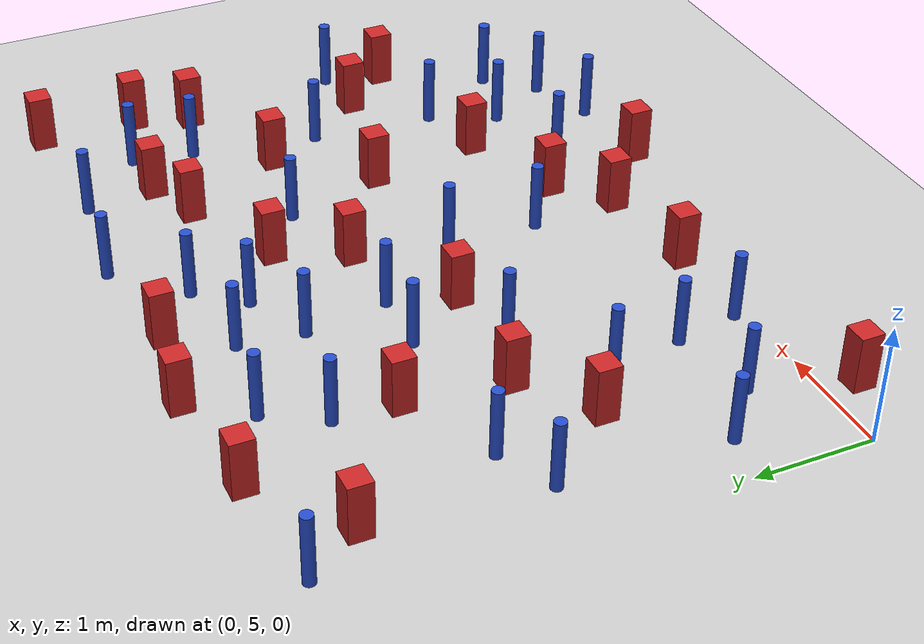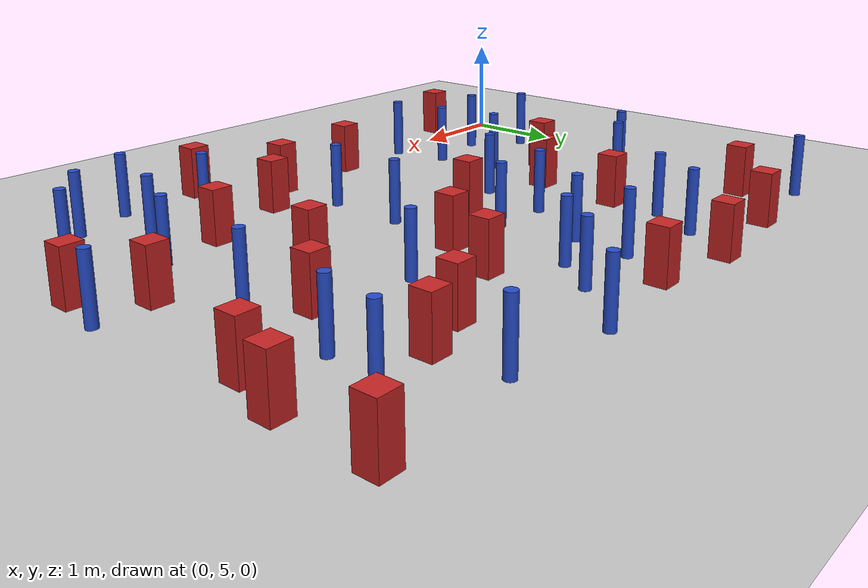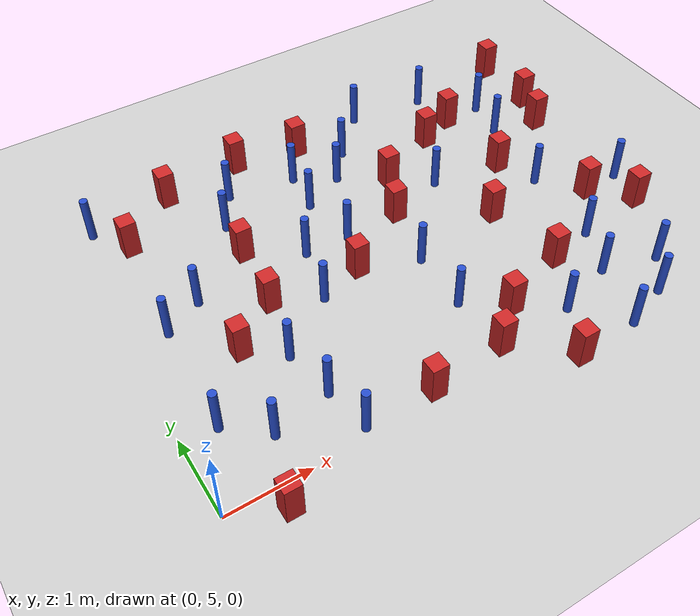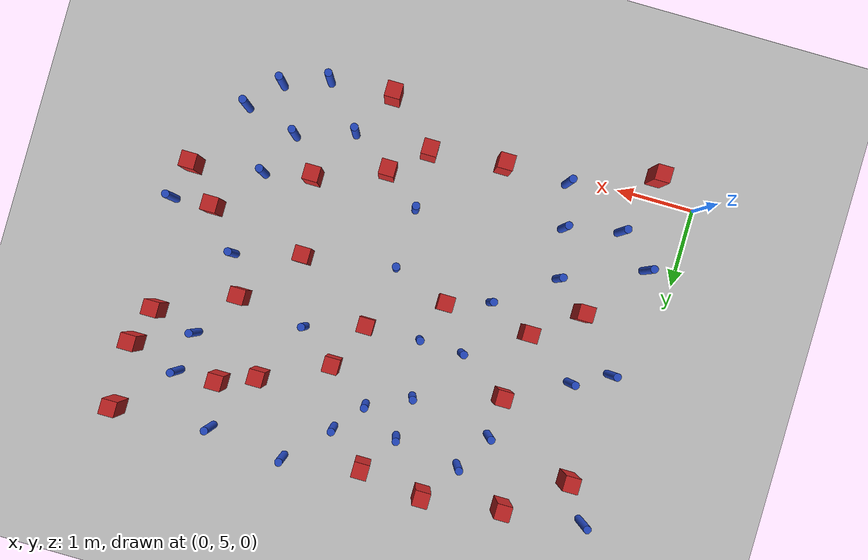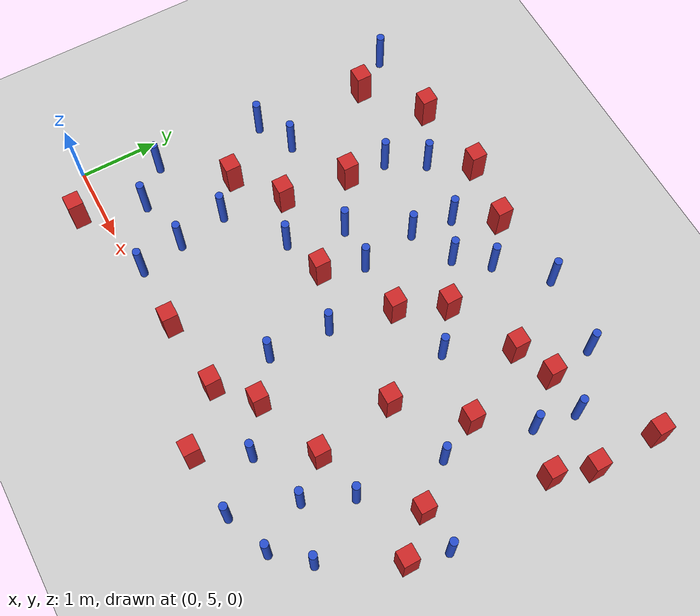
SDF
<sdf version="1.6">
 <world name="default">
  <model name="ground_plane">
   <static>1</static>
   <link name="link">
    <collision name="collision">
     <geometry><plane><normal>0 0 1</normal><size>100 100</size></plane></geometry>
     <surface><friction><ode><mu>100</mu><mu2>50</mu2></ode></friction></surface>
    </collision>
    <visual name="visual">
     <cast_shadows>0</cast_shadows>
     <geometry><plane><normal>0 0 1</normal><size>100 100</size></plane></geometry>
     <material>
      <ambient>1.0 1.0 1.0 1.0</ambient>
      <diffuse>0.8 0.8 0.8 1.0</diffuse>
      <specular>0.01 0.01 0.01 1.000000</specular>
     </material>
    </visual>
   </link>
  </model>
  <model name="pole_obstacle4">
   <static>true</static>
   <pose>0.323887015425 9.21397192133 2.88873142074e-08 -9.90536691079e-09 4.6021994896e-07 -1.2096599498e-07</pose>
   <link name="link">
    <pose>0 0 0.3 0 -0 0</pose>
    <inertial>
     <mass>1</mass>
     <inertia><ixx>0.145833</ixx><ixy>0</ixy><ixz>0</ixz><iyy>0.145833</iyy><iyz>0</iyz><izz>0.125</izz></inertia>
    </inertial>
    <collision name="collision">
     <geometry><cylinder><radius>0.05</radius><length>.6</length></cylinder></geometry>
    </collision>
    <visual name="visual">
     <geometry><cylinder><radius>0.05</radius><length>.6</length></cylinder></geometry>
     <material>
      <script><name>Gazebo/Blue</name><uri>file://media/materials/scripts/gazebo.material</uri></script>
     </material>
    </visual>
   </link>
  </model>
  <model name="square_post_obstacle14">
   <static>true</static>
   <pose>3.63677658492 7.55898815684 8.22691968438e-08 7.2212513382e-06 -7.54495500217e-07 2.29674213826e-05</pose>
   <link name="link">
    <pose>0 0 0.25 0 -0 0</pose>
    <inertial>
     <mass>100</mass>
     <inertia>
      <ixx>0.166667</ixx>
      <ixy>0</ixy>
      <ixz>0</ixz>
      <iyy>0.166667</iyy>
      <iyz>0</iyz>
      <izz>0.166667</izz>
     </inertia>
    </inertial>
    <collision name="collision"><geometry><box><size>.2 .2 .5</size></box></geometry></collision>
    <visual name="visual">
     <geometry><box><size>.2 .2 .5</size></box></geometry>
     <material>
      <script><name>Gazebo/Red</name><uri>file://media/materials/scripts/gazebo.material</uri></script>
     </material>
    </visual>
   </link>
  </model>
  <model name="pole_obstacle22">
   <static>true</static>
   <pose>0.950173048812 7.55065239568 2.88873142074e-08 -9.90536689421e-09 4.60219948999e-07 -1.20965994953e-07</pose>
   <link name="link">
    <pose>0 0 0.3 0 -0 0</pose>
    <inertial>
     <mass>1</mass>
     <inertia><ixx>0.145833</ixx><ixy>0</ixy><ixz>0</ixz><iyy>0.145833</iyy><iyz>0</iyz><izz>0.125</izz></inertia>
    </inertial>
    <collision name="collision">
     <geometry><cylinder><radius>0.05</radius><length>.6</length></cylinder></geometry>
    </collision>
    <visual name="visual">
     <geometry><cylinder><radius>0.05</radius><length>.6</length></cylinder></geometry>
     <material>
      <script><name>Gazebo/Blue</name><uri>file://media/materials/scripts/gazebo.material</uri></script>
     </material>
    </visual>
   </link>
  </model>
  <model name="pole_obstacle25">
   <static>true</static>
   <pose>2.82269506894 8.26971405818 2.88873142074e-08 -9.90536692318e-09 4.6021994893e-07 -1.20965994988e-07</pose>
   <link name="link">
    <pose>0 0 0.3 0 -0 0</pose>
    <inertial>
     <mass>1</mass>
     <inertia><ixx>0.145833</ixx><ixy>0</ixy><ixz>0</ixz><iyy>0.145833</iyy><iyz>0</iyz><izz>0.125</izz></inertia>
    </inertial>
    <collision name="collision">
     <geometry><cylinder><radius>0.05</radius><length>.6</length></cylinder></geometry>
    </collision>
    <visual name="visual">
     <geometry><cylinder><radius>0.05</radius><length>.6</length></cylinder></geometry>
     <material>
      <script><name>Gazebo/Blue</name><uri>file://media/materials/scripts/gazebo.material</uri></script>
     </material>
    </visual>
   </link>
  </model>
  <model name="pole_obstacle30">
   <static>true</static>
   <pose>4.92379157811 4.68522182047 2.88873142074e-08 -9.90536690842e-09 4.60219948965e-07 -1.20965994976e-07</pose>
   <link name="link">
    <pose>0 0 0.3 0 -0 0</pose>
    <inertial>
     <mass>1</mass>
     <inertia><ixx>0.145833</ixx><ixy>0</ixy><ixz>0</ixz><iyy>0.145833</iyy><iyz>0</iyz><izz>0.125</izz></inertia>
    </inertial>
    <collision name="collision">
     <geometry><cylinder><radius>0.05</radius><length>.6</length></cylinder></geometry>
    </collision>
    <visual name="visual">
     <geometry><cylinder><radius>0.05</radius><length>.6</length></cylinder></geometry>
     <material>
      <script><name>Gazebo/Blue</name><uri>file://media/materials/scripts/gazebo.material</uri></script>
     </material>
    </visual>
   </link>
  </model>
  <model name="pole_obstacle35">
   <static>true</static>
   <pose>5.69602780803 8.23479884407 2.88873142074e-08 -9.9053668967e-09 4.60219948993e-07 -1.20965994957e-07</pose>
   <link name="link">
    <pose>0 0 0.3 0 -0 0</pose>
    <inertial>
     <mass>1</mass>
     <inertia><ixx>0.145833</ixx><ixy>0</ixy><ixz>0</ixz><iyy>0.145833</iyy><iyz>0</iyz><izz>0.125</izz></inertia>
    </inertial>
    <collision name="collision">
     <geometry><cylinder><radius>0.05</radius><length>.6</length></cylinder></geometry>
    </collision>
    <visual name="visual">
     <geometry><cylinder><radius>0.05</radius><length>.6</length></cylinder></geometry>
     <material>
      <script><name>Gazebo/Blue</name><uri>file://media/materials/scripts/gazebo.material</uri></script>
     </material>
    </visual>
   </link>
  </model>
  <model name="pole_obstacle37">
   <static>true</static>
   <pose>2.03733783742 8.95342131998 2.88873142074e-08 -9.90536692041e-09 4.60219948937e-07 -1.20965994983e-07</pose>
   <link name="link">
    <pose>0 0 0.3 0 -0 0</pose>
    <inertial>
     <mass>1</mass>
     <inertia><ixx>0.145833</ixx><ixy>0</ixy><ixz>0</ixz><iyy>0.145833</iyy><iyz>0</iyz><izz>0.125</izz></inertia>
    </inertial>
    <collision name="collision">
     <geometry><cylinder><radius>0.05</radius><length>.6</length></cylinder></geometry>
    </collision>
    <visual name="visual">
     <geometry><cylinder><radius>0.05</radius><length>.6</length></cylinder></geometry>
     <material>
      <script><name>Gazebo/Blue</name><uri>file://media/materials/scripts/gazebo.material</uri></script>
     </material>
    </visual>
   </link>
  </model>
  <model name="square_post_obstacle47">
   <static>true</static>
   <pose>4.09818582257 4.64468004644 8.22691968438e-08 7.2212513382e-06 -7.54495500217e-07 2.29674213826e-05</pose>
   <link name="link">
    <pose>0 0 0.25 0 -0 0</pose>
    <inertial>
     <mass>100</mass>
     <inertia>
      <ixx>0.166667</ixx>
      <ixy>0</ixy>
      <ixz>0</ixz>
      <iyy>0.166667</iyy>
      <iyz>0</iyz>
      <izz>0.166667</izz>
     </inertia>
    </inertial>
    <collision name="collision"><geometry><box><size>.2 .2 .5</size></box></geometry></collision>
    <visual name="visual">
     <geometry><box><size>.2 .2 .5</size></box></geometry>
     <material>
      <script><name>Gazebo/Red</name><uri>file://media/materials/scripts/gazebo.material</uri></script>
     </material>
    </visual>
   </link>
  </model>
  <model name="pole_obstacle48">
   <static>true</static>
   <pose>2.93356682661 7.54465981404 2.88873142074e-08 -9.90536689859e-09 4.60219948989e-07 -1.20965994961e-07</pose>
   <link name="link">
    <pose>0 0 0.3 0 -0 0</pose>
    <inertial>
     <mass>1</mass>
     <inertia><ixx>0.145833</ixx><ixy>0</ixy><ixz>0</ixz><iyy>0.145833</iyy><iyz>0</iyz><izz>0.125</izz></inertia>
    </inertial>
    <collision name="collision">
     <geometry><cylinder><radius>0.05</radius><length>.6</length></cylinder></geometry>
    </collision>
    <visual name="visual">
     <geometry><cylinder><radius>0.05</radius><length>.6</length></cylinder></geometry>
     <material>
      <script><name>Gazebo/Blue</name><uri>file://media/materials/scripts/gazebo.material</uri></script>
     </material>
    </visual>
   </link>
  </model>
  <model name="pole_obstacle49">
   <static>true</static>
   <pose>2.1944712223 6.83934589096 2.88873142074e-08 -9.90536689859e-09 4.60219948989e-07 -1.20965994961e-07</pose>
   <link name="link">
    <pose>0 0 0.3 0 -0 0</pose>
    <inertial>
     <mass>1</mass>
     <inertia><ixx>0.145833</ixx><ixy>0</ixy><ixz>0</ixz><iyy>0.145833</iyy><iyz>0</iyz><izz>0.125</izz></inertia>
    </inertial>
    <collision name="collision">
     <geometry><cylinder><radius>0.05</radius><length>.6</length></cylinder></geometry>
    </collision>
    <visual name="visual">
     <geometry><cylinder><radius>0.05</radius><length>.6</length></cylinder></geometry>
     <material>
      <script><name>Gazebo/Blue</name><uri>file://media/materials/scripts/gazebo.material</uri></script>
     </material>
    </visual>
   </link>
  </model>
  <model name="pole_obstacle52">
   <static>true</static>
   <pose>3.37131609979 8.52998242322 2.88873142074e-08 -9.90536692318e-09 4.6021994893e-07 -1.20965994988e-07</pose>
   <link name="link">
    <pose>0 0 0.3 0 -0 0</pose>
    <inertial>
     <mass>1</mass>
     <inertia><ixx>0.145833</ixx><ixy>0</ixy><ixz>0</ixz><iyy>0.145833</iyy><iyz>0</iyz><izz>0.125</izz></inertia>
    </inertial>
    <collision name="collision">
     <geometry><cylinder><radius>0.05</radius><length>.6</length></cylinder></geometry>
    </collision>
    <visual name="visual">
     <geometry><cylinder><radius>0.05</radius><length>.6</length></cylinder></geometry>
     <material>
      <script><name>Gazebo/Blue</name><uri>file://media/materials/scripts/gazebo.material</uri></script>
     </material>
    </visual>
   </link>
  </model>
  <model name="square_post_obstacle60">
   <static>true</static>
   <pose>2.5076563168 5.1134117841 8.22691968438e-08 7.2212513382e-06 -7.54495500217e-07 2.29674213826e-05</pose>
   <link name="link">
    <pose>0 0 0.25 0 -0 0</pose>
    <inertial>
     <mass>100</mass>
     <inertia>
      <ixx>0.166667</ixx>
      <ixy>0</ixy>
      <ixz>0</ixz>
      <iyy>0.166667</iyy>
      <iyz>0</iyz>
      <izz>0.166667</izz>
     </inertia>
    </inertial>
    <collision name="collision"><geometry><box><size>.2 .2 .5</size></box></geometry></collision>
    <visual name="visual">
     <geometry><box><size>.2 .2 .5</size></box></geometry>
     <material>
      <script><name>Gazebo/Red</name><uri>file://media/materials/scripts/gazebo.material</uri></script>
     </material>
    </visual>
   </link>
  </model>
  <model name="pole_obstacle58">
   <static>true</static>
   <pose>5.1859239941 9.33736668658 2.88873142074e-08 -9.9053668967e-09 4.60219948993e-07 -1.20965994957e-07</pose>
   <link name="link">
    <pose>0 0 0.3 0 -0 0</pose>
    <inertial>
     <mass>1</mass>
     <inertia><ixx>0.145833</ixx><ixy>0</ixy><ixz>0</ixz><iyy>0.145833</iyy><iyz>0</iyz><izz>0.125</izz></inertia>
    </inertial>
    <collision name="collision">
     <geometry><cylinder><radius>0.05</radius><length>.6</length></cylinder></geometry>
    </collision>
    <visual name="visual">
     <geometry><cylinder><radius>0.05</radius><length>.6</length></cylinder></geometry>
     <material>
      <script><name>Gazebo/Blue</name><uri>file://media/materials/scripts/gazebo.material</uri></script>
     </material>
    </visual>
   </link>
  </model>
  <model name="pole_obstacle60">
   <static>true</static>
   <pose>5.7826598599 8.76427361058 2.88873142074e-08 -9.9053668967e-09 4.60219948993e-07 -1.20965994957e-07</pose>
   <link name="link">
    <pose>0 0 0.3 0 -0 0</pose>
    <inertial>
     <mass>1</mass>
     <inertia><ixx>0.145833</ixx><ixy>0</ixy><ixz>0</ixz><iyy>0.145833</iyy><iyz>0</iyz><izz>0.125</izz></inertia>
    </inertial>
    <collision name="collision">
     <geometry><cylinder><radius>0.05</radius><length>.6</length></cylinder></geometry>
    </collision>
    <visual name="visual">
     <geometry><cylinder><radius>0.05</radius><length>.6</length></cylinder></geometry>
     <material>
      <script><name>Gazebo/Blue</name><uri>file://media/materials/scripts/gazebo.material</uri></script>
     </material>
    </visual>
   </link>
  </model>
  <model name="square_post_obstacle62">
   <static>true</static>
   <pose>1.03796478009 6.65535827447 8.22691968438e-08 7.2212513382e-06 -7.54495500217e-07 2.29674213826e-05</pose>
   <link name="link">
    <pose>0 0 0.25 0 -0 0</pose>
    <inertial>
     <mass>100</mass>
     <inertia>
      <ixx>0.166667</ixx>
      <ixy>0</ixy>
      <ixz>0</ixz>
      <iyy>0.166667</iyy>
      <iyz>0</iyz>
      <izz>0.166667</izz>
     </inertia>
    </inertial>
    <collision name="collision"><geometry><box><size>.2 .2 .5</size></box></geometry></collision>
    <visual name="visual">
     <geometry><box><size>.2 .2 .5</size></box></geometry>
     <material>
      <script><name>Gazebo/Red</name><uri>file://media/materials/scripts/gazebo.material</uri></script>
     </material>
    </visual>
   </link>
  </model>
  <model name="square_post_obstacle70">
   <static>true</static>
   <pose>3.90623999853 5.59426192436 8.22691968438e-08 7.2212513382e-06 -7.54495500217e-07 2.29674213826e-05</pose>
   <link name="link">
    <pose>0 0 0.25 0 -0 0</pose>
    <inertial>
     <mass>100</mass>
     <inertia>
      <ixx>0.166667</ixx>
      <ixy>0</ixy>
      <ixz>0</ixz>
      <iyy>0.166667</iyy>
      <iyz>0</iyz>
      <izz>0.166667</izz>
     </inertia>
    </inertial>
    <collision name="collision"><geometry><box><size>.2 .2 .5</size></box></geometry></collision>
    <visual name="visual">
     <geometry><box><size>.2 .2 .5</size></box></geometry>
     <material>
      <script><name>Gazebo/Red</name><uri>file://media/materials/scripts/gazebo.material</uri></script>
     </material>
    </visual>
   </link>
  </model>
  <model name="pole_obstacle69">
   <static>true</static>
   <pose>5.41878019644 6.04757635142 2.88873142074e-08 -9.90536690842e-09 4.60219948965e-07 -1.20965994976e-07</pose>
   <link name="link">
    <pose>0 0 0.3 0 -0 0</pose>
    <inertial>
     <mass>1</mass>
     <inertia><ixx>0.145833</ixx><ixy>0</ixy><ixz>0</ixz><iyy>0.145833</iyy><iyz>0</iyz><izz>0.125</izz></inertia>
    </inertial>
    <collision name="collision">
     <geometry><cylinder><radius>0.05</radius><length>.6</length></cylinder></geometry>
    </collision>
    <visual name="visual">
     <geometry><cylinder><radius>0.05</radius><length>.6</length></cylinder></geometry>
     <material>
      <script><name>Gazebo/Blue</name><uri>file://media/materials/scripts/gazebo.material</uri></script>
     </material>
    </visual>
   </link>
  </model>
  <model name="pole_obstacle72">
   <static>true</static>
   <pose>3.4697938914 6.75033264166 2.88873142074e-08 -9.90536689859e-09 4.60219948989e-07 -1.20965994961e-07</pose>
   <link name="link">
    <pose>0 0 0.3 0 -0 0</pose>
    <inertial>
     <mass>1</mass>
     <inertia><ixx>0.145833</ixx><ixy>0</ixy><ixz>0</ixz><iyy>0.145833</iyy><iyz>0</iyz><izz>0.125</izz></inertia>
    </inertial>
    <collision name="collision">
     <geometry><cylinder><radius>0.05</radius><length>.6</length></cylinder></geometry>
    </collision>
    <visual name="visual">
     <geometry><cylinder><radius>0.05</radius><length>.6</length></cylinder></geometry>
     <material>
      <script><name>Gazebo/Blue</name><uri>file://media/materials/scripts/gazebo.material</uri></script>
     </material>
    </visual>
   </link>
  </model>
  <model name="pole_obstacle77">
   <static>true</static>
   <pose>4.38929466348 7.7841677977 2.88873142074e-08 -9.90536690842e-09 4.60219948965e-07 -1.20965994976e-07</pose>
   <link name="link">
    <pose>0 0 0.3 0 -0 0</pose>
    <inertial>
     <mass>1</mass>
     <inertia><ixx>0.145833</ixx><ixy>0</ixy><ixz>0</ixz><iyy>0.145833</iyy><iyz>0</iyz><izz>0.125</izz></inertia>
    </inertial>
    <collision name="collision">
     <geometry><cylinder><radius>0.05</radius><length>.6</length></cylinder></geometry>
    </collision>
    <visual name="visual">
     <geometry><cylinder><radius>0.05</radius><length>.6</length></cylinder></geometry>
     <material>
      <script><name>Gazebo/Blue</name><uri>file://media/materials/scripts/gazebo.material</uri></script>
     </material>
    </visual>
   </link>
  </model>
  <model name="square_post_obstacle78">
   <static>true</static>
   <pose>4.8005068522 5.91413477453 8.22691968438e-08 7.2212513382e-06 -7.54495500217e-07 2.29674213826e-05</pose>
   <link name="link">
    <pose>0 0 0.25 0 -0 0</pose>
    <inertial>
     <mass>100</mass>
     <inertia>
      <ixx>0.166667</ixx>
      <ixy>0</ixy>
      <ixz>0</ixz>
      <iyy>0.166667</iyy>
      <iyz>0</iyz>
      <izz>0.166667</izz>
     </inertia>
    </inertial>
    <collision name="collision"><geometry><box><size>.2 .2 .5</size></box></geometry></collision>
    <visual name="visual">
     <geometry><box><size>.2 .2 .5</size></box></geometry>
     <material>
      <script><name>Gazebo/Red</name><uri>file://media/materials/scripts/gazebo.material</uri></script>
     </material>
    </visual>
   </link>
  </model>
  <model name="pole_obstacle87">
   <static>true</static>
   <pose>5.50969540749 7.13810821115 2.88873142074e-08 -9.90536690842e-09 4.60219948965e-07 -1.20965994976e-07</pose>
   <link name="link">
    <pose>0 0 0.3 0 -0 0</pose>
    <inertial>
     <mass>1</mass>
     <inertia><ixx>0.145833</ixx><ixy>0</ixy><ixz>0</ixz><iyy>0.145833</iyy><iyz>0</iyz><izz>0.125</izz></inertia>
    </inertial>
    <collision name="collision">
     <geometry><cylinder><radius>0.05</radius><length>.6</length></cylinder></geometry>
    </collision>
    <visual name="visual">
     <geometry><cylinder><radius>0.05</radius><length>.6</length></cylinder></geometry>
     <material>
      <script><name>Gazebo/Blue</name><uri>file://media/materials/scripts/gazebo.material</uri></script>
     </material>
    </visual>
   </link>
  </model>
  <model name="square_post_obstacle82">
   <static>true</static>
   <pose>1.72884170051 7.9577436808 8.22691968438e-08 7.22125133819e-06 -7.54495500217e-07 2.29674213826e-05</pose>
   <link name="link">
    <pose>0 0 0.25 0 -0 0</pose>
    <inertial>
     <mass>100</mass>
     <inertia>
      <ixx>0.166667</ixx>
      <ixy>0</ixy>
      <ixz>0</ixz>
      <iyy>0.166667</iyy>
      <iyz>0</iyz>
      <izz>0.166667</izz>
     </inertia>
    </inertial>
    <collision name="collision"><geometry><box><size>.2 .2 .5</size></box></geometry></collision>
    <visual name="visual">
     <geometry><box><size>.2 .2 .5</size></box></geometry>
     <material>
      <script><name>Gazebo/Red</name><uri>file://media/materials/scripts/gazebo.material</uri></script>
     </material>
    </visual>
   </link>
  </model>
  <model name="pole_obstacle98">
   <static>true</static>
   <pose>0.852867453015 5.52579957787 2.88873142074e-08 -9.90536689661e-09 4.60219948993e-07 -1.20965994957e-07</pose>
   <link name="link">
    <pose>0 0 0.3 0 -0 0</pose>
    <inertial>
     <mass>1</mass>
     <inertia><ixx>0.145833</ixx><ixy>0</ixy><ixz>0</ixz><iyy>0.145833</iyy><iyz>0</iyz><izz>0.125</izz></inertia>
    </inertial>
    <collision name="collision">
     <geometry><cylinder><radius>0.05</radius><length>.6</length></cylinder></geometry>
    </collision>
    <visual name="visual">
     <geometry><cylinder><radius>0.05</radius><length>.6</length></cylinder></geometry>
     <material>
      <script><name>Gazebo/Blue</name><uri>file://media/materials/scripts/gazebo.material</uri></script>
     </material>
    </visual>
   </link>
  </model>
  <model name="pole_obstacle100">
   <static>true</static>
   <pose>3.68324589077 8.92150761681 2.88873142074e-08 -9.90536692318e-09 4.6021994893e-07 -1.20965994988e-07</pose>
   <link name="link">
    <pose>0 0 0.3 0 -0 0</pose>
    <inertial>
     <mass>1</mass>
     <inertia><ixx>0.145833</ixx><ixy>0</ixy><ixz>0</ixz><iyy>0.145833</iyy><iyz>0</iyz><izz>0.125</izz></inertia>
    </inertial>
    <collision name="collision">
     <geometry><cylinder><radius>0.05</radius><length>.6</length></cylinder></geometry>
    </collision>
    <visual name="visual">
     <geometry><cylinder><radius>0.05</radius><length>.6</length></cylinder></geometry>
     <material>
      <script><name>Gazebo/Blue</name><uri>file://media/materials/scripts/gazebo.material</uri></script>
     </material>
    </visual>
   </link>
  </model>
  <model name="pole_obstacle103">
   <static>true</static>
   <pose>0.406956449706 5.91147586317 2.88873142074e-08 -9.90536689683e-09 4.60219948993e-07 -1.20965994957e-07</pose>
   <link name="link">
    <pose>0 0 0.3 0 -0 0</pose>
    <inertial>
     <mass>1</mass>
     <inertia><ixx>0.145833</ixx><ixy>0</ixy><ixz>0</ixz><iyy>0.145833</iyy><iyz>0</iyz><izz>0.125</izz></inertia>
    </inertial>
    <collision name="collision">
     <geometry><cylinder><radius>0.05</radius><length>.6</length></cylinder></geometry>
    </collision>
    <visual name="visual">
     <geometry><cylinder><radius>0.05</radius><length>.6</length></cylinder></geometry>
     <material>
      <script><name>Gazebo/Blue</name><uri>file://media/materials/scripts/gazebo.material</uri></script>
     </material>
    </visual>
   </link>
  </model>
  <model name="pole_obstacle106">
   <static>true</static>
   <pose>1.56507140873 5.67999973535 2.88873142074e-08 -9.90536689852e-09 4.60219948989e-07 -1.2096599496e-07</pose>
   <link name="link">
    <pose>0 0 0.3 0 -0 0</pose>
    <inertial>
     <mass>1</mass>
     <inertia><ixx>0.145833</ixx><ixy>0</ixy><ixz>0</ixz><iyy>0.145833</iyy><iyz>0</iyz><izz>0.125</izz></inertia>
    </inertial>
    <collision name="collision">
     <geometry><cylinder><radius>0.05</radius><length>.6</length></cylinder></geometry>
    </collision>
    <visual name="visual">
     <geometry><cylinder><radius>0.05</radius><length>.6</length></cylinder></geometry>
     <material>
      <script><name>Gazebo/Blue</name><uri>file://media/materials/scripts/gazebo.material</uri></script>
     </material>
    </visual>
   </link>
  </model>
  <model name="square_post_obstacle96">
   <static>true</static>
   <pose>3.20557329384 9.30743097875 8.22691968438e-08 7.22125133819e-06 -7.54495500217e-07 2.29674213826e-05</pose>
   <link name="link">
    <pose>0 0 0.25 0 -0 0</pose>
    <inertial>
     <mass>100</mass>
     <inertia>
      <ixx>0.166667</ixx>
      <ixy>0</ixy>
      <ixz>0</ixz>
      <iyy>0.166667</iyy>
      <iyz>0</iyz>
      <izz>0.166667</izz>
     </inertia>
    </inertial>
    <collision name="collision"><geometry><box><size>.2 .2 .5</size></box></geometry></collision>
    <visual name="visual">
     <geometry><box><size>.2 .2 .5</size></box></geometry>
     <material>
      <script><name>Gazebo/Red</name><uri>file://media/materials/scripts/gazebo.material</uri></script>
     </material>
    </visual>
   </link>
  </model>
  <model name="square_post_obstacle98">
   <static>true</static>
   <pose>4.77326869169 8.55569597124 8.22691968438e-08 7.22125133819e-06 -7.54495500217e-07 2.29674213826e-05</pose>
   <link name="link">
    <pose>0 0 0.25 0 -0 0</pose>
    <inertial>
     <mass>100</mass>
     <inertia>
      <ixx>0.166667</ixx>
      <ixy>0</ixy>
      <ixz>0</ixz>
      <iyy>0.166667</iyy>
      <iyz>0</iyz>
      <izz>0.166667</izz>
     </inertia>
    </inertial>
    <collision name="collision"><geometry><box><size>.2 .2 .5</size></box></geometry></collision>
    <visual name="visual">
     <geometry><box><size>.2 .2 .5</size></box></geometry>
     <material>
      <script><name>Gazebo/Red</name><uri>file://media/materials/scripts/gazebo.material</uri></script>
     </material>
    </visual>
   </link>
  </model>
  <model name="square_post_obstacle105">
   <static>true</static>
   <pose>6.26629386001 8.07768207496 8.22691968438e-08 7.22125133819e-06 -7.54495500217e-07 2.29674213826e-05</pose>
   <link name="link">
    <pose>0 0 0.25 0 -0 0</pose>
    <inertial>
     <mass>100</mass>
     <inertia>
      <ixx>0.166667</ixx>
      <ixy>0</ixy>
      <ixz>0</ixz>
      <iyy>0.166667</iyy>
      <iyz>0</iyz>
      <izz>0.166667</izz>
     </inertia>
    </inertial>
    <collision name="collision"><geometry><box><size>.2 .2 .5</size></box></geometry></collision>
    <visual name="visual">
     <geometry><box><size>.2 .2 .5</size></box></geometry>
     <material>
      <script><name>Gazebo/Red</name><uri>file://media/materials/scripts/gazebo.material</uri></script>
     </material>
    </visual>
   </link>
  </model>
  <model name="square_post_obstacle108">
   <static>true</static>
   <pose>2.38024249684 9.43820209556 8.22691968438e-08 7.22125133819e-06 -7.54495500217e-07 2.29674213826e-05</pose>
   <link name="link">
    <pose>0 0 0.25 0 -0 0</pose>
    <inertial>
     <mass>100</mass>
     <inertia>
      <ixx>0.166667</ixx>
      <ixy>0</ixy>
      <ixz>0</ixz>
      <iyy>0.166667</iyy>
      <iyz>0</iyz>
      <izz>0.166667</izz>
     </inertia>
    </inertial>
    <collision name="collision"><geometry><box><size>.2 .2 .5</size></box></geometry></collision>
    <visual name="visual">
     <geometry><box><size>.2 .2 .5</size></box></geometry>
     <material>
      <script><name>Gazebo/Red</name><uri>file://media/materials/scripts/gazebo.material</uri></script>
     </material>
    </visual>
   </link>
  </model>
  <model name="pole_obstacle120">
   <static>true</static>
   <pose>1.45590131537 6.31628544356 2.88873142074e-08 -9.90536689852e-09 4.60219948989e-07 -1.2096599496e-07</pose>
   <link name="link">
    <pose>0 0 0.3 0 -0 0</pose>
    <inertial>
     <mass>1</mass>
     <inertia><ixx>0.145833</ixx><ixy>0</ixy><ixz>0</ixz><iyy>0.145833</iyy><iyz>0</iyz><izz>0.125</izz></inertia>
    </inertial>
    <collision name="collision">
     <geometry><cylinder><radius>0.05</radius><length>.6</length></cylinder></geometry>
    </collision>
    <visual name="visual">
     <geometry><cylinder><radius>0.05</radius><length>.6</length></cylinder></geometry>
     <material>
      <script><name>Gazebo/Blue</name><uri>file://media/materials/scripts/gazebo.material</uri></script>
     </material>
    </visual>
   </link>
  </model>
  <model name="pole_obstacle125">
   <static>true</static>
   <pose>4.20116968299 9.45628957132 2.88873142074e-08 -9.9053668967e-09 4.60219948993e-07 -1.20965994957e-07</pose>
   <link name="link">
    <pose>0 0 0.3 0 -0 0</pose>
    <inertial>
     <mass>1</mass>
     <inertia><ixx>0.145833</ixx><ixy>0</ixy><ixz>0</ixz><iyy>0.145833</iyy><iyz>0</iyz><izz>0.125</izz></inertia>
    </inertial>
    <collision name="collision">
     <geometry><cylinder><radius>0.05</radius><length>.6</length></cylinder></geometry>
    </collision>
    <visual name="visual">
     <geometry><cylinder><radius>0.05</radius><length>.6</length></cylinder></geometry>
     <material>
      <script><name>Gazebo/Blue</name><uri>file://media/materials/scripts/gazebo.material</uri></script>
     </material>
    </visual>
   </link>
  </model>
  <model name="square_post_obstacle117">
   <static>true</static>
   <pose>6.42974425437 8.55969217708 8.22691968438e-08 7.22125133819e-06 -7.54495500217e-07 2.29674213826e-05</pose>
   <link name="link">
    <pose>0 0 0.25 0 -0 0</pose>
    <inertial>
     <mass>100</mass>
     <inertia>
      <ixx>0.166667</ixx>
      <ixy>0</ixy>
      <ixz>0</ixz>
      <iyy>0.166667</iyy>
      <iyz>0</iyz>
      <izz>0.166667</izz>
     </inertia>
    </inertial>
    <collision name="collision"><geometry><box><size>.2 .2 .5</size></box></geometry></collision>
    <visual name="visual">
     <geometry><box><size>.2 .2 .5</size></box></geometry>
     <material>
      <script><name>Gazebo/Red</name><uri>file://media/materials/scripts/gazebo.material</uri></script>
     </material>
    </visual>
   </link>
  </model>
  <model name="square_post_obstacle120">
   <static>true</static>
   <pose>2.74944022971 7.0120950529 8.22691968438e-08 7.2212513382e-06 -7.54495500217e-07 2.29674213826e-05</pose>
   <link name="link">
    <pose>0 0 0.25 0 -0 0</pose>
    <inertial>
     <mass>100</mass>
     <inertia>
      <ixx>0.166667</ixx>
      <ixy>0</ixy>
      <ixz>0</ixz>
      <iyy>0.166667</iyy>
      <iyz>0</iyz>
      <izz>0.166667</izz>
     </inertia>
    </inertial>
    <collision name="collision"><geometry><box><size>.2 .2 .5</size></box></geometry></collision>
    <visual name="visual">
     <geometry><box><size>.2 .2 .5</size></box></geometry>
     <material>
      <script><name>Gazebo/Red</name><uri>file://media/materials/scripts/gazebo.material</uri></script>
     </material>
    </visual>
   </link>
  </model>
  <model name="square_post_obstacle132">
   <static>true</static>
   <pose>0.632160821823 8.75303709787 8.22691968438e-08 7.22125133819e-06 -7.54495500217e-07 2.29674213826e-05</pose>
   <link name="link">
    <pose>0 0 0.25 0 -0 0</pose>
    <inertial>
     <mass>100</mass>
     <inertia>
      <ixx>0.166667</ixx>
      <ixy>0</ixy>
      <ixz>0</ixz>
      <iyy>0.166667</iyy>
      <iyz>0</iyz>
      <izz>0.166667</izz>
     </inertia>
    </inertial>
    <collision name="collision"><geometry><box><size>.2 .2 .5</size></box></geometry></collision>
    <visual name="visual">
     <geometry><box><size>.2 .2 .5</size></box></geometry>
     <material>
      <script><name>Gazebo/Red</name><uri>file://media/materials/scripts/gazebo.material</uri></script>
     </material>
    </visual>
   </link>
  </model>
  <model name="square_post_obstacle133">
   <static>true</static>
   <pose>5.27805417912 7.6358633828 8.22691968438e-08 7.2212513382e-06 -7.54495500217e-07 2.29674213826e-05</pose>
   <link name="link">
    <pose>0 0 0.25 0 -0 0</pose>
    <inertial>
     <mass>100</mass>
     <inertia>
      <ixx>0.166667</ixx>
      <ixy>0</ixy>
      <ixz>0</ixz>
      <iyy>0.166667</iyy>
      <iyz>0</iyz>
      <izz>0.166667</izz>
     </inertia>
    </inertial>
    <collision name="collision"><geometry><box><size>.2 .2 .5</size></box></geometry></collision>
    <visual name="visual">
     <geometry><box><size>.2 .2 .5</size></box></geometry>
     <material>
      <script><name>Gazebo/Red</name><uri>file://media/materials/scripts/gazebo.material</uri></script>
     </material>
    </visual>
   </link>
  </model>
  <model name="pole_obstacle144">
   <static>true</static>
   <pose>5.84832868235 5.2874509208 2.88873142074e-08 -9.90536690842e-09 4.60219948965e-07 -1.20965994976e-07</pose>
   <link name="link">
    <pose>0 0 0.3 0 -0 0</pose>
    <inertial>
     <mass>1</mass>
     <inertia><ixx>0.145833</ixx><ixy>0</ixy><ixz>0</ixz><iyy>0.145833</iyy><iyz>0</iyz><izz>0.125</izz></inertia>
    </inertial>
    <collision name="collision">
     <geometry><cylinder><radius>0.05</radius><length>.6</length></cylinder></geometry>
    </collision>
    <visual name="visual">
     <geometry><cylinder><radius>0.05</radius><length>.6</length></cylinder></geometry>
     <material>
      <script><name>Gazebo/Blue</name><uri>file://media/materials/scripts/gazebo.material</uri></script>
     </material>
    </visual>
   </link>
  </model>
  <model name="square_post_obstacle140">
   <static>true</static>
   <pose>0.591647159877 4.72443116 8.22691968438e-08 7.2212513382e-06 -7.54495500217e-07 2.29674213826e-05</pose>
   <link name="link">
    <pose>0 0 0.25 0 -0 0</pose>
    <inertial>
     <mass>100</mass>
     <inertia>
      <ixx>0.166667</ixx>
      <ixy>0</ixy>
      <ixz>0</ixz>
      <iyy>0.166667</iyy>
      <iyz>0</iyz>
      <izz>0.166667</izz>
     </inertia>
    </inertial>
    <collision name="collision"><geometry><box><size>.2 .2 .5</size></box></geometry></collision>
    <visual name="visual">
     <geometry><box><size>.2 .2 .5</size></box></geometry>
     <material>
      <script><name>Gazebo/Red</name><uri>file://media/materials/scripts/gazebo.material</uri></script>
     </material>
    </visual>
   </link>
  </model>
  <model name="square_post_obstacle143">
   <static>true</static>
   <pose>4.64396593196 6.92056041477 8.22691968438e-08 7.2212513382e-06 -7.54495500217e-07 2.29674213826e-05</pose>
   <link name="link">
    <pose>0 0 0.25 0 -0 0</pose>
    <inertial>
     <mass>100</mass>
     <inertia>
      <ixx>0.166667</ixx>
      <ixy>0</ixy>
      <ixz>0</ixz>
      <iyy>0.166667</iyy>
      <iyz>0</iyz>
      <izz>0.166667</izz>
     </inertia>
    </inertial>
    <collision name="collision"><geometry><box><size>.2 .2 .5</size></box></geometry></collision>
    <visual name="visual">
     <geometry><box><size>.2 .2 .5</size></box></geometry>
     <material>
      <script><name>Gazebo/Red</name><uri>file://media/materials/scripts/gazebo.material</uri></script>
     </material>
    </visual>
   </link>
  </model>
  <model name="square_post_obstacle145">
   <static>true</static>
   <pose>3.91412348178 8.14918200966 8.22691968438e-08 7.22125133819e-06 -7.54495500217e-07 2.29674213826e-05</pose>
   <link name="link">
    <pose>0 0 0.25 0 -0 0</pose>
    <inertial>
     <mass>100</mass>
     <inertia>
      <ixx>0.166667</ixx>
      <ixy>0</ixy>
      <ixz>0</ixz>
      <iyy>0.166667</iyy>
      <iyz>0</iyz>
      <izz>0.166667</izz>
     </inertia>
    </inertial>
    <collision name="collision"><geometry><box><size>.2 .2 .5</size></box></geometry></collision>
    <visual name="visual">
     <geometry><box><size>.2 .2 .5</size></box></geometry>
     <material>
      <script><name>Gazebo/Red</name><uri>file://media/materials/scripts/gazebo.material</uri></script>
     </material>
    </visual>
   </link>
  </model>
  <model name="square_post_obstacle146">
   <static>true</static>
   <pose>1.62770296116 7.09285409775 8.22691968438e-08 7.2212513382e-06 -7.54495500217e-07 2.29674213826e-05</pose>
   <link name="link">
    <pose>0 0 0.25 0 -0 0</pose>
    <inertial>
     <mass>100</mass>
     <inertia>
      <ixx>0.166667</ixx>
      <ixy>0</ixy>
      <ixz>0</ixz>
      <iyy>0.166667</iyy>
      <iyz>0</iyz>
      <izz>0.166667</izz>
     </inertia>
    </inertial>
    <collision name="collision"><geometry><box><size>.2 .2 .5</size></box></geometry></collision>
    <visual name="visual">
     <geometry><box><size>.2 .2 .5</size></box></geometry>
     <material>
      <script><name>Gazebo/Red</name><uri>file://media/materials/scripts/gazebo.material</uri></script>
     </material>
    </visual>
   </link>
  </model>
  <model name="pole_obstacle162">
   <static>true</static>
   <pose>5.16606144624 5.47546160138 2.88873142074e-08 -9.90536690842e-09 4.60219948965e-07 -1.20965994976e-07</pose>
   <link name="link">
    <pose>0 0 0.3 0 -0 0</pose>
    <inertial>
     <mass>1</mass>
     <inertia><ixx>0.145833</ixx><ixy>0</ixy><ixz>0</ixz><iyy>0.145833</iyy><iyz>0</iyz><izz>0.125</izz></inertia>
    </inertial>
    <collision name="collision">
     <geometry><cylinder><radius>0.05</radius><length>.6</length></cylinder></geometry>
    </collision>
    <visual name="visual">
     <geometry><cylinder><radius>0.05</radius><length>.6</length></cylinder></geometry>
     <material>
      <script><name>Gazebo/Blue</name><uri>file://media/materials/scripts/gazebo.material</uri></script>
     </material>
    </visual>
   </link>
  </model>
  <model name="square_post_obstacle156">
   <static>true</static>
   <pose>1.35641500627 9.31931218576 8.22691968438e-08 7.22125133819e-06 -7.54495500217e-07 2.29674213826e-05</pose>
   <link name="link">
    <pose>0 0 0.25 0 -0 0</pose>
    <inertial>
     <mass>100</mass>
     <inertia>
      <ixx>0.166667</ixx>
      <ixy>0</ixy>
      <ixz>0</ixz>
      <iyy>0.166667</iyy>
      <iyz>0</iyz>
      <izz>0.166667</izz>
     </inertia>
    </inertial>
    <collision name="collision"><geometry><box><size>.2 .2 .5</size></box></geometry></collision>
    <visual name="visual">
     <geometry><box><size>.2 .2 .5</size></box></geometry>
     <material>
      <script><name>Gazebo/Red</name><uri>file://media/materials/scripts/gazebo.material</uri></script>
     </material>
    </visual>
   </link>
  </model>
  <model name="square_post_obstacle160">
   <static>true</static>
   <pose>6.31898952172 6.17894813029 8.22691968438e-08 7.2212513382e-06 -7.54495500217e-07 2.29674213826e-05</pose>
   <link name="link">
    <pose>0 0 0.25 0 -0 0</pose>
    <inertial>
     <mass>100</mass>
     <inertia>
      <ixx>0.166667</ixx>
      <ixy>0</ixy>
      <ixz>0</ixz>
      <iyy>0.166667</iyy>
      <iyz>0</iyz>
      <izz>0.166667</izz>
     </inertia>
    </inertial>
    <collision name="collision"><geometry><box><size>.2 .2 .5</size></box></geometry></collision>
    <visual name="visual">
     <geometry><box><size>.2 .2 .5</size></box></geometry>
     <material>
      <script><name>Gazebo/Red</name><uri>file://media/materials/scripts/gazebo.material</uri></script>
     </material>
    </visual>
   </link>
  </model>
  <model name="pole_obstacle182">
   <static>true</static>
   <pose>1.76144427322 8.47942190177 2.88873142074e-08 -9.90536690474e-09 4.60219948974e-07 -1.2096599497e-07</pose>
   <link name="link">
    <pose>0 0 0.3 0 -0 0</pose>
    <inertial>
     <mass>1</mass>
     <inertia><ixx>0.145833</ixx><ixy>0</ixy><ixz>0</ixz><iyy>0.145833</iyy><iyz>0</iyz><izz>0.125</izz></inertia>
    </inertial>
    <collision name="collision">
     <geometry><cylinder><radius>0.05</radius><length>.6</length></cylinder></geometry>
    </collision>
    <visual name="visual">
     <geometry><cylinder><radius>0.05</radius><length>.6</length></cylinder></geometry>
     <material>
      <script><name>Gazebo/Blue</name><uri>file://media/materials/scripts/gazebo.material</uri></script>
     </material>
    </visual>
   </link>
  </model>
  <model name="pole_obstacle183">
   <static>true</static>
   <pose>5.49596982852 4.8912534999 2.88873142074e-08 -9.90536690842e-09 4.60219948965e-07 -1.20965994976e-07</pose>
   <link name="link">
    <pose>0 0 0.3 0 -0 0</pose>
    <inertial>
     <mass>1</mass>
     <inertia><ixx>0.145833</ixx><ixy>0</ixy><ixz>0</ixz><iyy>0.145833</iyy><iyz>0</iyz><izz>0.125</izz></inertia>
    </inertial>
    <collision name="collision">
     <geometry><cylinder><radius>0.05</radius><length>.6</length></cylinder></geometry>
    </collision>
    <visual name="visual">
     <geometry><cylinder><radius>0.05</radius><length>.6</length></cylinder></geometry>
     <material>
      <script><name>Gazebo/Blue</name><uri>file://media/materials/scripts/gazebo.material</uri></script>
     </material>
    </visual>
   </link>
  </model>
  <model name="square_post_obstacle172">
   <static>true</static>
   <pose>5.91478966898 6.6271715265 8.22691968438e-08 7.2212513382e-06 -7.54495500217e-07 2.29674213826e-05</pose>
   <link name="link">
    <pose>0 0 0.25 0 -0 0</pose>
    <inertial>
     <mass>100</mass>
     <inertia>
      <ixx>0.166667</ixx>
      <ixy>0</ixy>
      <ixz>0</ixz>
      <iyy>0.166667</iyy>
      <iyz>0</iyz>
      <izz>0.166667</izz>
     </inertia>
    </inertial>
    <collision name="collision"><geometry><box><size>.2 .2 .5</size></box></geometry></collision>
    <visual name="visual">
     <geometry><box><size>.2 .2 .5</size></box></geometry>
     <material>
      <script><name>Gazebo/Red</name><uri>file://media/materials/scripts/gazebo.material</uri></script>
     </material>
    </visual>
   </link>
  </model>
  <model name="pole_obstacle184">
   <static>true</static>
   <pose>0.4805386674 7.31129449806 2.88873142074e-08 -9.90536689616e-09 4.60219948994e-07 -1.20965994955e-07</pose>
   <link name="link">
    <pose>0 0 0.3 0 -0 0</pose>
    <inertial>
     <mass>1</mass>
     <inertia><ixx>0.145833</ixx><ixy>0</ixy><ixz>0</ixz><iyy>0.145833</iyy><iyz>0</iyz><izz>0.125</izz></inertia>
    </inertial>
    <collision name="collision">
     <geometry><cylinder><radius>0.05</radius><length>.6</length></cylinder></geometry>
    </collision>
    <visual name="visual">
     <geometry><cylinder><radius>0.05</radius><length>.6</length></cylinder></geometry>
     <material>
      <script><name>Gazebo/Blue</name><uri>file://media/materials/scripts/gazebo.material</uri></script>
     </material>
    </visual>
   </link>
  </model>
  <model name="pole_obstacle191">
   <static>true</static>
   <pose>6.44221749601 6.66414989502 2.88873142074e-08 -9.90536690842e-09 4.60219948965e-07 -1.20965994976e-07</pose>
   <link name="link">
    <pose>0 0 0.3 0 -0 0</pose>
    <inertial>
     <mass>1</mass>
     <inertia><ixx>0.145833</ixx><ixy>0</ixy><ixz>0</ixz><iyy>0.145833</iyy><iyz>0</iyz><izz>0.125</izz></inertia>
    </inertial>
    <collision name="collision">
     <geometry><cylinder><radius>0.05</radius><length>.6</length></cylinder></geometry>
    </collision>
    <visual name="visual">
     <geometry><cylinder><radius>0.05</radius><length>.6</length></cylinder></geometry>
     <material>
      <script><name>Gazebo/Blue</name><uri>file://media/materials/scripts/gazebo.material</uri></script>
     </material>
    </visual>
   </link>
  </model>
  <model name="pole_obstacle194">
   <static>true</static>
   <pose>3.43867308542 5.96298435535 2.88873142074e-08 -9.90536689859e-09 4.60219948989e-07 -1.20965994961e-07</pose>
   <link name="link">
    <pose>0 0 0.3 0 -0 0</pose>
    <inertial>
     <mass>1</mass>
     <inertia><ixx>0.145833</ixx><ixy>0</ixy><ixz>0</ixz><iyy>0.145833</iyy><iyz>0</iyz><izz>0.125</izz></inertia>
    </inertial>
    <collision name="collision">
     <geometry><cylinder><radius>0.05</radius><length>.6</length></cylinder></geometry>
    </collision>
    <visual name="visual">
     <geometry><cylinder><radius>0.05</radius><length>.6</length></cylinder></geometry>
     <material>
      <script><name>Gazebo/Blue</name><uri>file://media/materials/scripts/gazebo.material</uri></script>
     </material>
    </visual>
   </link>
  </model>
  <model name="pole_obstacle199">
   <static>true</static>
   <pose>4.4340727758 5.2406286582 2.88873142074e-08 -9.90536690842e-09 4.60219948965e-07 -1.20965994976e-07</pose>
   <link name="link">
    <pose>0 0 0.3 0 -0 0</pose>
    <inertial>
     <mass>1</mass>
     <inertia><ixx>0.145833</ixx><ixy>0</ixy><ixz>0</ixz><iyy>0.145833</iyy><iyz>0</iyz><izz>0.125</izz></inertia>
    </inertial>
    <collision name="collision">
     <geometry><cylinder><radius>0.05</radius><length>.6</length></cylinder></geometry>
    </collision>
    <visual name="visual">
     <geometry><cylinder><radius>0.05</radius><length>.6</length></cylinder></geometry>
     <material>
      <script><name>Gazebo/Blue</name><uri>file://media/materials/scripts/gazebo.material</uri></script>
     </material>
    </visual>
   </link>
  </model>
  <model name="pole_obstacle202">
   <static>true</static>
   <pose>2.88396296522 8.81825961684 2.88873142074e-08 -9.90536692318e-09 4.6021994893e-07 -1.20965994988e-07</pose>
   <link name="link">
    <pose>0 0 0.3 0 -0 0</pose>
    <inertial>
     <mass>1</mass>
     <inertia><ixx>0.145833</ixx><ixy>0</ixy><ixz>0</ixz><iyy>0.145833</iyy><iyz>0</iyz><izz>0.125</izz></inertia>
    </inertial>
    <collision name="collision">
     <geometry><cylinder><radius>0.05</radius><length>.6</length></cylinder></geometry>
    </collision>
    <visual name="visual">
     <geometry><cylinder><radius>0.05</radius><length>.6</length></cylinder></geometry>
     <material>
      <script><name>Gazebo/Blue</name><uri>file://media/materials/scripts/gazebo.material</uri></script>
     </material>
    </visual>
   </link>
  </model>
  <model name="pole_obstacle211">
   <static>true</static>
   <pose>2.37076390741 7.56460127923 2.88873142074e-08 -9.90536689859e-09 4.60219948989e-07 -1.20965994961e-07</pose>
   <link name="link">
    <pose>0 0 0.3 0 -0 0</pose>
    <inertial>
     <mass>1</mass>
     <inertia><ixx>0.145833</ixx><ixy>0</ixy><ixz>0</ixz><iyy>0.145833</iyy><iyz>0</iyz><izz>0.125</izz></inertia>
    </inertial>
    <collision name="collision">
     <geometry><cylinder><radius>0.05</radius><length>.6</length></cylinder></geometry>
    </collision>
    <visual name="visual">
     <geometry><cylinder><radius>0.05</radius><length>.6</length></cylinder></geometry>
     <material>
      <script><name>Gazebo/Blue</name><uri>file://media/materials/scripts/gazebo.material</uri></script>
     </material>
    </visual>
   </link>
  </model>
  <model name="pole_obstacle212">
   <static>true</static>
   <pose>1.67207683007 5.11591953081 2.88873142074e-08 -9.90536689852e-09 4.60219948989e-07 -1.2096599496e-07</pose>
   <link name="link">
    <pose>0 0 0.3 0 -0 0</pose>
    <inertial>
     <mass>1</mass>
     <inertia><ixx>0.145833</ixx><ixy>0</ixy><ixz>0</ixz><iyy>0.145833</iyy><iyz>0</iyz><izz>0.125</izz></inertia>
    </inertial>
    <collision name="collision">
     <geometry><cylinder><radius>0.05</radius><length>.6</length></cylinder></geometry>
    </collision>
    <visual name="visual">
     <geometry><cylinder><radius>0.05</radius><length>.6</length></cylinder></geometry>
     <material>
      <script><name>Gazebo/Blue</name><uri>file://media/materials/scripts/gazebo.material</uri></script>
     </material>
    </visual>
   </link>
  </model>
  <model name="square_post_obstacle212">
   <static>true</static>
   <pose>6.43060003262 9.41035996466 8.22691968438e-08 7.22125133819e-06 -7.54495500217e-07 2.29674213826e-05</pose>
   <link name="link">
    <pose>0 0 0.25 0 -0 0</pose>
    <inertial>
     <mass>100</mass>
     <inertia>
      <ixx>0.166667</ixx>
      <ixy>0</ixy>
      <ixz>0</ixz>
      <iyy>0.166667</iyy>
      <iyz>0</iyz>
      <izz>0.166667</izz>
     </inertia>
    </inertial>
    <collision name="collision"><geometry><box><size>.2 .2 .5</size></box></geometry></collision>
    <visual name="visual">
     <geometry><box><size>.2 .2 .5</size></box></geometry>
     <material>
      <script><name>Gazebo/Red</name><uri>file://media/materials/scripts/gazebo.material</uri></script>
     </material>
    </visual>
   </link>
  </model>
  <model name="square_post_obstacle213">
   <static>true</static>
   <pose>5.25326003262 8.74130996466 8.22691968438e-08 7.22125133819e-06 -7.54495500217e-07 2.29674213826e-05</pose>
   <link name="link">
    <pose>0 0 0.25 0 -0 0</pose>
    <inertial>
     <mass>100</mass>
     <inertia>
      <ixx>0.166667</ixx>
      <ixy>0</ixy>
      <ixz>0</ixz>
      <iyy>0.166667</iyy>
      <iyz>0</iyz>
      <izz>0.166667</izz>
     </inertia>
    </inertial>
    <collision name="collision"><geometry><box><size>.2 .2 .5</size></box></geometry></collision>
    <visual name="visual">
     <geometry><box><size>.2 .2 .5</size></box></geometry>
     <material>
      <script><name>Gazebo/Red</name><uri>file://media/materials/scripts/gazebo.material</uri></script>
     </material>
    </visual>
   </link>
  </model>
  <model name="square_post_obstacle217">
   <static>true</static>
   <pose>3.46592003262 5.20767996466 8.22691968438e-08 7.2212513382e-06 -7.54495500217e-07 2.29674213826e-05</pose>
   <link name="link">
    <pose>0 0 0.25 0 -0 0</pose>
    <inertial>
     <mass>100</mass>
     <inertia>
      <ixx>0.166667</ixx>
      <ixy>0</ixy>
      <ixz>0</ixz>
      <iyy>0.166667</iyy>
      <iyz>0</iyz>
      <izz>0.166667</izz>
     </inertia>
    </inertial>
    <collision name="collision"><geometry><box><size>.2 .2 .5</size></box></geometry></collision>
    <visual name="visual">
     <geometry><box><size>.2 .2 .5</size></box></geometry>
     <material>
      <script><name>Gazebo/Red</name><uri>file://media/materials/scripts/gazebo.material</uri></script>
     </material>
    </visual>
   </link>
  </model>
 </world>
</sdf>
